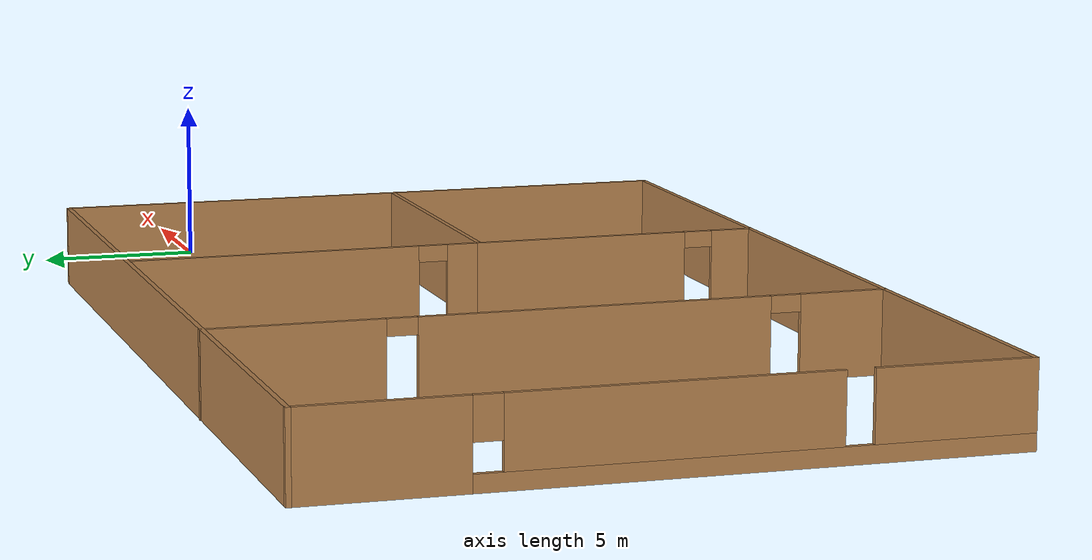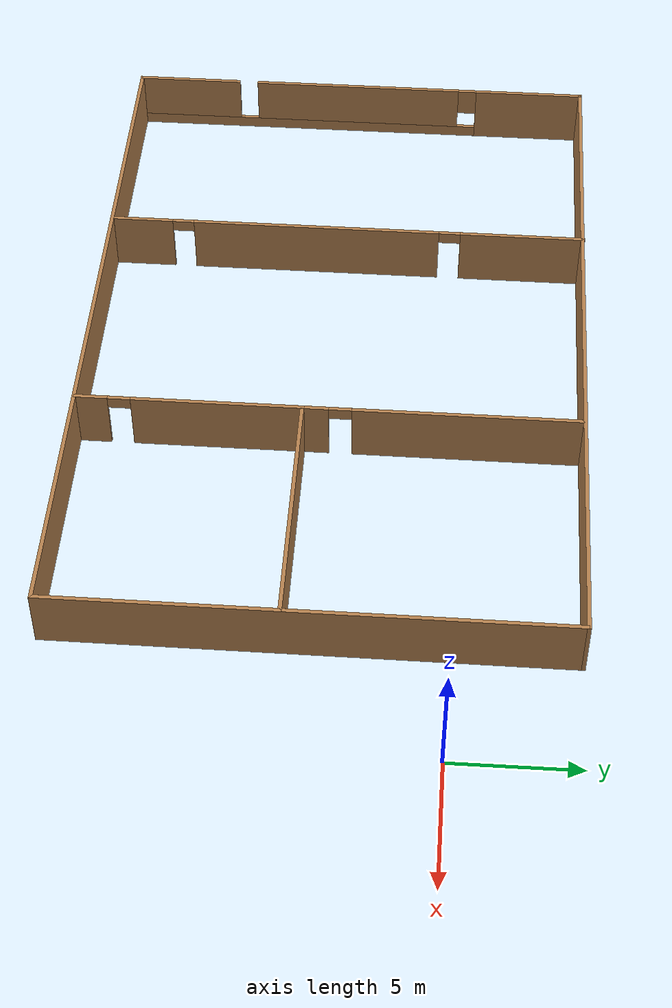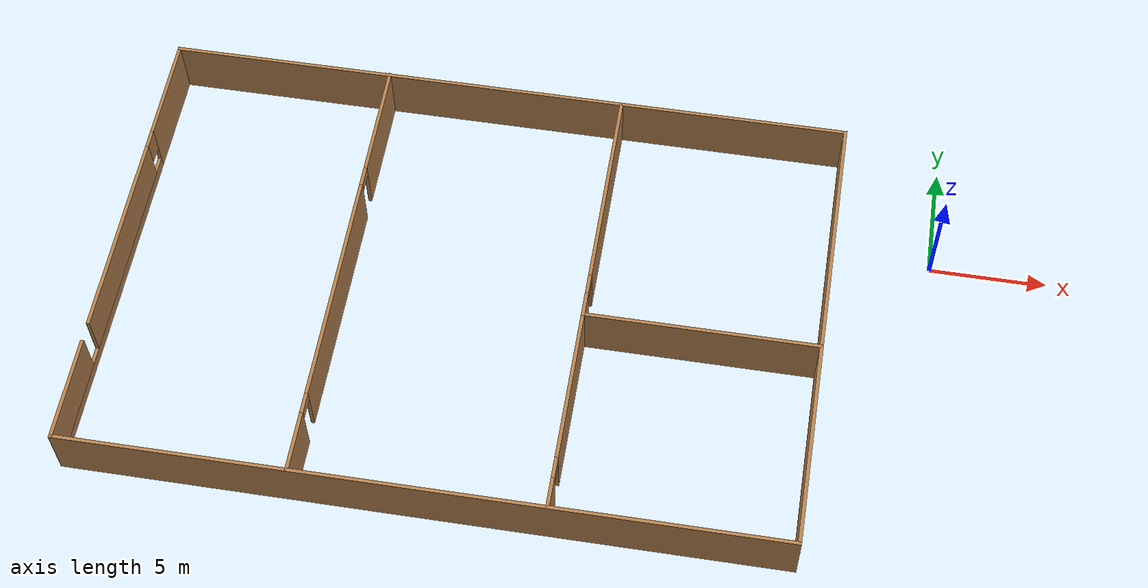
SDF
<?xml version='1.0'?>
<sdf version='1.7'>
  <model name='model'>
    <pose>-17.1271 -4.99512 0 0 -0 0</pose>
    <link name='Wall_0'>
      <collision name='Wall_0_Collision'>
        <geometry>
          <box>
            <size>30 0.15 2.5</size>
          </box>
        </geometry>
        <pose>0 0 1.25 0 -0 0</pose>
      </collision>
      <visual name='Wall_0_Visual'>
        <pose>0 0 1.25 0 -0 0</pose>
        <geometry>
          <box>
            <size>30 0.15 2.5</size>
          </box>
        </geometry>
        <material>
          <script>
            <uri>file://media/materials/scripts/gazebo.material</uri>
            <name>Gazebo/Wood</name>
          </script>
          <ambient>1 1 1 1</ambient>
        </material>
        <meta>
          <layer>0</layer>
        </meta>
      </visual>
      <pose>-2.12711 9.91327 0 0 -0 0</pose>
    </link>
    <link name='Wall_11'>
      <pose>-7.45648 0.011726 0 0 -0 -1.5708</pose>
      <visual name='Wall_11_Visual_0'>
        <pose>-7.3926 0 1.25 0 -0 0</pose>
        <geometry>
          <box>
            <size>5.21481 0.15 2.5</size>
          </box>
        </geometry>
        <material>
          <script>
            <uri>file://media/materials/scripts/gazebo.material</uri>
            <name>Gazebo/Wood</name>
          </script>
          <ambient>1 1 1 1</ambient>
        </material>
        <meta>
          <layer>0</layer>
        </meta>
      </visual>
      <collision name='Wall_11_Collision_0'>
        <geometry>
          <box>
            <size>5.21481 0.15 2.5</size>
          </box>
        </geometry>
        <pose>-7.3926 0 1.25 0 -0 0</pose>
      </collision>
      <visual name='Wall_11_Visual_1'>
        <pose>1.28999 0 1.25 0 -0 0</pose>
        <geometry>
          <box>
            <size>10.3504 0.15 2.5</size>
          </box>
        </geometry>
        <material>
          <script>
            <uri>file://media/materials/scripts/gazebo.material</uri>
            <name>Gazebo/Wood</name>
          </script>
          <ambient>1 1 1 1</ambient>
        </material>
        <meta>
          <layer>0</layer>
        </meta>
      </visual>
      <collision name='Wall_11_Collision_1'>
        <geometry>
          <box>
            <size>10.3504 0.15 2.5</size>
          </box>
        </geometry>
        <pose>1.28999 0 1.25 0 -0 0</pose>
      </collision>
      <visual name='Wall_11_Visual_2'>
        <pose>8.68259 0 1.25 0 -0 0</pose>
        <geometry>
          <box>
            <size>2.63482 0.15 2.5</size>
          </box>
        </geometry>
        <material>
          <script>
            <uri>file://media/materials/scripts/gazebo.material</uri>
            <name>Gazebo/Wood</name>
          </script>
          <ambient>1 1 1 1</ambient>
        </material>
        <meta>
          <layer>0</layer>
        </meta>
      </visual>
      <collision name='Wall_11_Collision_2'>
        <geometry>
          <box>
            <size>2.63482 0.15 2.5</size>
          </box>
        </geometry>
        <pose>8.68259 0 1.25 0 -0 0</pose>
      </collision>
      <visual name='Wall_11_Visual_3'>
        <pose>-4.33519 0 2.25 0 -0 0</pose>
        <geometry>
          <box>
            <size>0.9 0.15 0.5</size>
          </box>
        </geometry>
        <material>
          <script>
            <uri>file://media/materials/scripts/gazebo.material</uri>
            <name>Gazebo/Wood</name>
          </script>
          <ambient>1 1 1 1</ambient>
        </material>
        <meta>
          <layer>0</layer>
        </meta>
      </visual>
      <collision name='Wall_11_Collision_3'>
        <geometry>
          <box>
            <size>0.9 0.15 0.5</size>
          </box>
        </geometry>
        <pose>-4.33519 0 2.25 0 -0 0</pose>
      </collision>
      <visual name='Wall_11_Visual_4'>
        <pose>6.91518 0 2.25 0 -0 0</pose>
        <geometry>
          <box>
            <size>0.9 0.15 0.5</size>
          </box>
        </geometry>
        <material>
          <script>
            <uri>file://media/materials/scripts/gazebo.material</uri>
            <name>Gazebo/Wood</name>
          </script>
          <ambient>1 1 1 1</ambient>
        </material>
        <meta>
          <layer>0</layer>
        </meta>
      </visual>
      <collision name='Wall_11_Collision_4'>
        <geometry>
          <box>
            <size>0.9 0.15 0.5</size>
          </box>
        </geometry>
        <pose>6.91518 0 2.25 0 -0 0</pose>
      </collision>
    </link>
    <link name='Wall_13'>
      <pose>2.94481 4.39975 0 0 -0 1.5708</pose>
      <visual name='Wall_13_Visual_0'>
        <pose>-4.94724 0 1.25 0 -0 0</pose>
        <geometry>
          <box>
            <size>1.10553 0.15 2.5</size>
          </box>
        </geometry>
        <material>
          <script>
            <uri>file://media/materials/scripts/gazebo.material</uri>
            <name>Gazebo/Wood</name>
          </script>
          <ambient>1 1 1 1</ambient>
        </material>
        <meta>
          <layer>0</layer>
        </meta>
      </visual>
      <collision name='Wall_13_Collision_0'>
        <geometry>
          <box>
            <size>1.10553 0.15 2.5</size>
          </box>
        </geometry>
        <pose>-4.94724 0 1.25 0 -0 0</pose>
      </collision>
      <visual name='Wall_13_Visual_1'>
        <pose>1.00276 0 1.25 0 -0 0</pose>
        <geometry>
          <box>
            <size>8.99447 0.15 2.5</size>
          </box>
        </geometry>
        <material>
          <script>
            <uri>file://media/materials/scripts/gazebo.material</uri>
            <name>Gazebo/Wood</name>
          </script>
          <ambient>1 1 1 1</ambient>
        </material>
        <meta>
          <layer>0</layer>
        </meta>
      </visual>
      <collision name='Wall_13_Collision_1'>
        <geometry>
          <box>
            <size>8.99447 0.15 2.5</size>
          </box>
        </geometry>
        <pose>1.00276 0 1.25 0 -0 0</pose>
      </collision>
      <visual name='Wall_13_Visual_2'>
        <pose>-3.94447 0 2.25 0 -0 0</pose>
        <geometry>
          <box>
            <size>0.9 0.15 0.5</size>
          </box>
        </geometry>
        <material>
          <script>
            <uri>file://media/materials/scripts/gazebo.material</uri>
            <name>Gazebo/Wood</name>
          </script>
          <ambient>1 1 1 1</ambient>
        </material>
        <meta>
          <layer>0</layer>
        </meta>
      </visual>
      <collision name='Wall_13_Collision_2'>
        <geometry>
          <box>
            <size>0.9 0.15 0.5</size>
          </box>
        </geometry>
        <pose>-3.94447 0 2.25 0 -0 0</pose>
      </collision>
    </link>
    <link name='Wall_2'>
      <pose>-17.0521 -0.011726 0 0 -0 -1.5708</pose>
      <visual name='Wall_2_Visual_0'>
        <pose>-7.62697 0 1.25 0 -0 0</pose>
        <geometry>
          <box>
            <size>4.74606 0.15 2.5</size>
          </box>
        </geometry>
        <material>
          <script>
            <uri>file://media/materials/scripts/gazebo.material</uri>
            <name>Gazebo/Wood</name>
          </script>
          <ambient>1 1 1 1</ambient>
        </material>
        <meta>
          <layer>0</layer>
        </meta>
      </visual>
      <collision name='Wall_2_Collision_0'>
        <geometry>
          <box>
            <size>4.74606 0.15 2.5</size>
          </box>
        </geometry>
        <pose>-7.62697 0 1.25 0 -0 0</pose>
      </collision>
      <visual name='Wall_2_Visual_1'>
        <pose>2.37303 0 0.25 0 -0 0</pose>
        <geometry>
          <box>
            <size>15.2539 0.15 0.5</size>
          </box>
        </geometry>
        <material>
          <script>
            <uri>file://media/materials/scripts/gazebo.material</uri>
            <name>Gazebo/Wood</name>
          </script>
          <ambient>1 1 1 1</ambient>
        </material>
        <meta>
          <layer>0</layer>
        </meta>
      </visual>
      <collision name='Wall_2_Collision_1'>
        <geometry>
          <box>
            <size>15.2539 0.15 0.5</size>
          </box>
        </geometry>
        <pose>2.37303 0 0.25 0 -0 0</pose>
      </collision>
      <visual name='Wall_2_Visual_2'>
        <pose>0.099049 0 1.5 0 -0 0</pose>
        <geometry>
          <box>
            <size>9.10599 0.15 2</size>
          </box>
        </geometry>
        <material>
          <script>
            <uri>file://media/materials/scripts/gazebo.material</uri>
            <name>Gazebo/Wood</name>
          </script>
          <ambient>1 1 1 1</ambient>
        </material>
        <meta>
          <layer>0</layer>
        </meta>
      </visual>
      <collision name='Wall_2_Collision_2'>
        <geometry>
          <box>
            <size>9.10599 0.15 2</size>
          </box>
        </geometry>
        <pose>0.099049 0 1.5 0 -0 0</pose>
      </collision>
      <visual name='Wall_2_Visual_3'>
        <pose>7.72602 0 1.5 0 -0 0</pose>
        <geometry>
          <box>
            <size>4.54796 0.15 2</size>
          </box>
        </geometry>
        <material>
          <script>
            <uri>file://media/materials/scripts/gazebo.material</uri>
            <name>Gazebo/Wood</name>
          </script>
          <ambient>1 1 1 1</ambient>
        </material>
        <meta>
          <layer>0</layer>
        </meta>
      </visual>
      <collision name='Wall_2_Collision_3'>
        <geometry>
          <box>
            <size>4.54796 0.15 2</size>
          </box>
        </geometry>
        <pose>7.72602 0 1.5 0 -0 0</pose>
      </collision>
      <visual name='Wall_2_Visual_4'>
        <pose>-4.85395 0 1.9 0 -0 0</pose>
        <geometry>
          <box>
            <size>0.8 0.15 1.2</size>
          </box>
        </geometry>
        <material>
          <script>
            <uri>file://media/materials/scripts/gazebo.material</uri>
            <name>Gazebo/Wood</name>
          </script>
          <ambient>1 1 1 1</ambient>
        </material>
        <meta>
          <layer>0</layer>
        </meta>
      </visual>
      <collision name='Wall_2_Collision_4'>
        <geometry>
          <box>
            <size>0.8 0.15 1.2</size>
          </box>
        </geometry>
        <pose>-4.85395 0 1.9 0 -0 0</pose>
      </collision>
      <visual name='Wall_2_Visual_5'>
        <pose>4.65204 0 1.9 0 -0 0</pose>
        <geometry>
          <box>
            <size>0 0.15 1.2</size>
          </box>
        </geometry>
        <material>
          <script>
            <uri>file://media/materials/scripts/gazebo.material</uri>
            <name>Gazebo/Wood</name>
          </script>
          <ambient>1 1 1 1</ambient>
        </material>
        <meta>
          <layer>0</layer>
        </meta>
      </visual>
      <collision name='Wall_2_Collision_5'>
        <geometry>
          <box>
            <size>0 0.15 1.2</size>
          </box>
        </geometry>
        <pose>4.65204 0 1.9 0 -0 0</pose>
      </collision>
    </link>
    <link name='Wall_4'>
      <collision name='Wall_4_Collision'>
        <geometry>
          <box>
            <size>30 0.15 2.5</size>
          </box>
        </geometry>
        <pose>0 0 1.25 0 -0 0</pose>
      </collision>
      <visual name='Wall_4_Visual'>
        <pose>0 0 1.25 0 -0 0</pose>
        <geometry>
          <box>
            <size>30 0.15 2.5</size>
          </box>
        </geometry>
        <material>
          <script>
            <uri>file://media/materials/scripts/gazebo.material</uri>
            <name>Gazebo/Wood</name>
          </script>
          <ambient>1 1 1 1</ambient>
        </material>
        <meta>
          <layer>0</layer>
        </meta>
      </visual>
      <pose>-2.12711 -9.93673 0 0 -0 0</pose>
    </link>
    <link name='Wall_6'>
      <collision name='Wall_6_Collision'>
        <geometry>
          <box>
            <size>20 0.15 2.5</size>
          </box>
        </geometry>
        <pose>0 0 1.25 0 -0 0</pose>
      </collision>
      <visual name='Wall_6_Visual'>
        <pose>0 0 1.25 0 -0 0</pose>
        <geometry>
          <box>
            <size>20 0.15 2.5</size>
          </box>
        </geometry>
        <material>
          <script>
            <uri>file://media/materials/scripts/gazebo.material</uri>
            <name>Gazebo/Wood</name>
          </script>
          <ambient>1 1 1 1</ambient>
        </material>
        <meta>
          <layer>0</layer>
        </meta>
      </visual>
      <pose>12.7979 -0.011726 0 0 -0 1.5708</pose>
    </link>
    <link name='Wall_8'>
      <pose>2.94481 -5.45025 0 0 -0 1.5708</pose>
      <visual name='Wall_8_Visual_0'>
        <pose>-3.83841 0 1.25 0 -0 0</pose>
        <geometry>
          <box>
            <size>1.32317 0.15 2.5</size>
          </box>
        </geometry>
        <material>
          <script>
            <uri>file://media/materials/scripts/gazebo.material</uri>
            <name>Gazebo/Wood</name>
          </script>
          <ambient>1 1 1 1</ambient>
        </material>
        <meta>
          <layer>0</layer>
        </meta>
      </visual>
      <collision name='Wall_8_Collision_0'>
        <geometry>
          <box>
            <size>1.32317 0.15 2.5</size>
          </box>
        </geometry>
        <pose>-3.83841 0 1.25 0 -0 0</pose>
      </collision>
      <visual name='Wall_8_Visual_1'>
        <pose>1.11159 0 1.25 0 -0 0</pose>
        <geometry>
          <box>
            <size>6.77683 0.15 2.5</size>
          </box>
        </geometry>
        <material>
          <script>
            <uri>file://media/materials/scripts/gazebo.material</uri>
            <name>Gazebo/Wood</name>
          </script>
          <ambient>1 1 1 1</ambient>
        </material>
        <meta>
          <layer>0</layer>
        </meta>
      </visual>
      <collision name='Wall_8_Collision_1'>
        <geometry>
          <box>
            <size>6.77683 0.15 2.5</size>
          </box>
        </geometry>
        <pose>1.11159 0 1.25 0 -0 0</pose>
      </collision>
      <visual name='Wall_8_Visual_2'>
        <pose>-2.72683 0 2.25 0 -0 0</pose>
        <geometry>
          <box>
            <size>0.9 0.15 0.5</size>
          </box>
        </geometry>
        <material>
          <script>
            <uri>file://media/materials/scripts/gazebo.material</uri>
            <name>Gazebo/Wood</name>
          </script>
          <ambient>1 1 1 1</ambient>
        </material>
        <meta>
          <layer>0</layer>
        </meta>
      </visual>
      <collision name='Wall_8_Collision_2'>
        <geometry>
          <box>
            <size>0.9 0.15 0.5</size>
          </box>
        </geometry>
        <pose>-2.72683 0 2.25 0 -0 0</pose>
      </collision>
    </link>
    <link name='Wall_9'>
      <collision name='Wall_9_Collision'>
        <geometry>
          <box>
            <size>10 0.15 2.5</size>
          </box>
        </geometry>
        <pose>0 0 1.25 0 -0 0</pose>
      </collision>
      <visual name='Wall_9_Visual'>
        <pose>0 0 1.25 0 -0 0</pose>
        <geometry>
          <box>
            <size>10 0.15 2.5</size>
          </box>
        </geometry>
        <material>
          <script>
            <uri>file://media/materials/scripts/gazebo.material</uri>
            <name>Gazebo/Wood</name>
          </script>
          <ambient>1 1 1 1</ambient>
        </material>
        <meta>
          <layer>0</layer>
        </meta>
      </visual>
      <pose>7.86981 -1.02525 0 0 -0 0</pose>
    </link>
    <static>1</static>
  </model>
</sdf>
